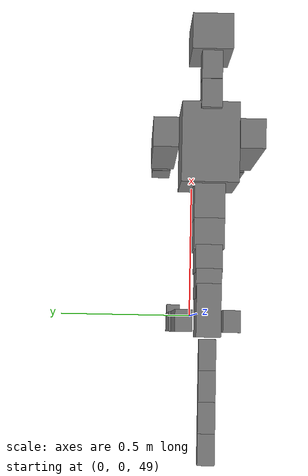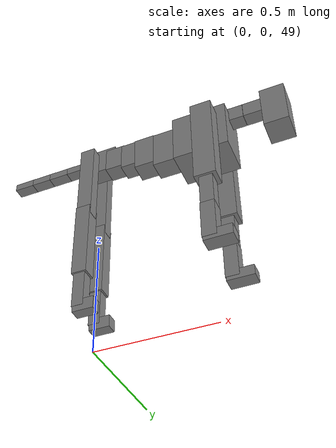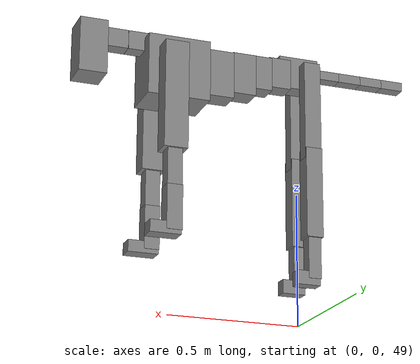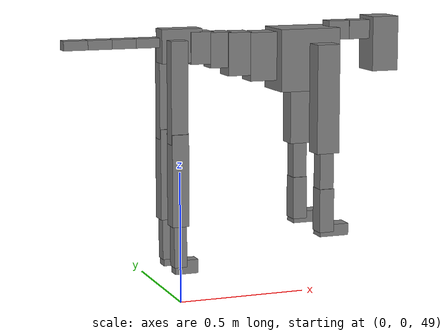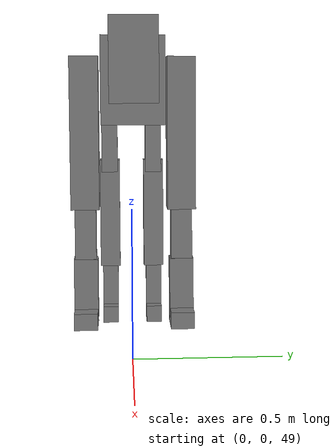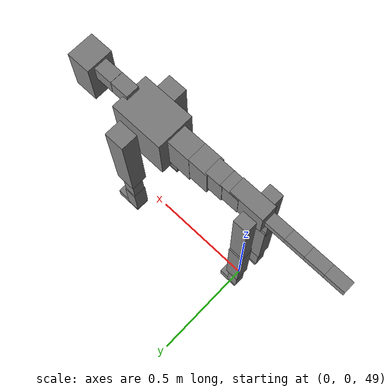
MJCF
<mujoco model="dog">

    <default>
        <joint armature="0.02" stiffness="1" damping="0.2" limited="true"/>
        <geom condim="3" friction="1 0.05 0.05" margin="0.01"/>
        <motor ctrllimited="true" ctrlrange="-1.0 1.0" forcelimited="true" gear="50"/>
    </default>

    <compiler inertiafromgeom="true" angle="radian"/>

    <option timestep="0.016" iterations="50" tolerance="1e-10" solver="Newton" jacobian="dense" cone="pyramidal"/>

    <size nconmax="20000" njmax="60000" nstack="5000000"/>
    <visual>
        <map force="0.1" zfar="30"/>
        <rgba haze="0.15 0.25 0.35 1"/>
        <quality shadowsize="2048"/>
        <global offwidth="800" offheight="800"/>
    </visual>

    <asset>
        <texture type="skybox" builtin="gradient" rgb1="0.3 0.5 0.7" rgb2="0 0 0" width="512" height="512"/>
        <texture name="texplane" type="2d" builtin="checker" rgb1=".2 .3 .4" rgb2=".1 0.15 0.2" width="512" height="512"
                 mark="cross" markrgb=".8 .8 .8"/>
        <texture name="texgeom" type="cube" builtin="flat" mark="cross" width="127" height="1278" rgb1="0.8 0.6 0.4"
                 rgb2="0.8 0.6 0.4" markrgb="1 1 1" random="0.01"/>

        <material name="matplane" reflectance="0.3" texture="texplane" texrepeat="1 1" texuniform="true"/>
        <material name="matgeom" texture="texgeom" texuniform="true" rgba="0.8 0.6 .4 1"/>
    </asset>

    <worldbody>
        <geom name="floor" pos="0 0 0" size="0 0 .25" type="plane" material="matplane" condim="3"/>

        <light directional="false" diffuse=".2 .2 .2" specular="0 0 0" pos="0 0 5" dir="0 0 -1" castshadow="false"/>
        <light mode="targetbodycom" target="torso" directional="false" diffuse=".8 .8 .8" specular="0.3 0.3 0.3"
               pos="0 0 4.0" dir="0 0 -1"/>

        <body name="root" pos="0 0 50">
            <freejoint name="root_1"/>
            <geom type="box" pos="0 0 -0.02" size="0.0774  0.0358  0.063" density="2030"/>

            <body name="spine1" pos="0.054 0 0">
                <joint name="spine1_y" axis="0 1 0" range="0 0.7" limited="true"/>
                <geom type="box" pos="0.02375 0 -0.03" size="0.04375  0.0375  0.05985" density="2030"/>

                <body name="spine2" pos="0.0612 0 0">
                    <joint name="spine2_y" axis="0 1 0" range="-0.15 0.15" limited="true"/>
                    <geom type="box" pos="0.03555  0  -0.04" size="0.04055  0.039  0.06615" density="2030"/>

                    <body name="spine3" pos="0.0730 0 0">
                        <joint name="spine3_y" axis="0 1 0" range="-0.15 0.15" limited="true"/>
                        <geom type="box" pos="0.03555  0  -0.057" size="0.04555  0.0445  0.081" density="2030"/>

                        <body name="spine4" pos="0.0780 0 0">
                            <joint name="spine4_y" axis="0 1 0" range="-0.15 0.15" limited="true"/>
                            <geom type="box" pos="0.05265  0  -0.07" size="0.05265  0.045  0.09135" density="2030"/>

                            <body name="torso" pos="0.1082 0 0">
                                <joint name="torso_y" axis="0 1 0" range="-0.15 0.15" limited="true"/>
                                <geom type="box" pos="0.11925  0  -0.085" size="0.11925  0.085  0.11745"
                                      density="2030"/>

                                <body name="neck1" pos="0.2160  0   0.0180">
                                    <joint name="neck1_y" axis="0 1 0" range="-1.2  -1" limited="true"/>
                                    <geom type="box" pos="0.0423  0  0" size="0.0423  0.03  0.036" density="2325"/>

                                    <body name="neck2" pos="0.0853  0  0">
                                        <joint name="neck2_y" axis="0 1 0" range="0.1  0" limited="true"/>
                                        <geom type="box" pos="0.0423  0  0" size="0.0423  0.03  0.036" density="2325"/>

                                        <body name="head" pos="0.0853  0  0">
                                            <joint name="head_y" axis="0 1 0" range="-0.3  -0.2" limited="true"/>
                                            <geom type="box" pos="0.0531  0  -0.055" size="0.0531  0.06  0.1044"
                                                  density="4030"/>

                                        </body>
                                    </body>
                                </body>

                                <body name="front_shoulder" pos="0.156  0   -0.0480">
                                    <joint name="front_shoulder_y" axis="0 1 0" range="-1 1.5" limited="true"/>
                                    <geom type="box" pos="0 0.13 -0.1785" size="0.0448  0.0383  0.2052" density="1158"/>
                                    <geom type="box" pos="0 -0.13 -0.1785" size="0.0448  0.0383  0.2052"
                                          density="1158"/>

                                    <body name="front_elbow" pos="0  0  -0.3571">
                                        <joint name="front_elbow_y" axis="0 1 0" range="-2 0" limited="true"/>
                                        <geom type="box" pos="0 0.13 -0.0882" size="0.0279  0.0285  0.0882"
                                              density="1081"/>
                                        <geom type="box" pos="0 -0.13 -0.0882" size="0.0279  0.0285  0.0882"
                                              density="1081"/>

                                        <body name="front_wrist" pos="0  0  -0.1765">
                                            <joint name="front_wrist_y" axis="0 1 0" range="-0.2 0" limited="true"/>
                                            <geom type="box" pos="0 0.13 -0.0699" size="0.0290  0.0323  0.0831"
                                                  density="1664"/>
                                            <geom type="box" pos="0 -0.13 -0.0699" size="0.0290  0.0323  0.0831"
                                                  density="1664"/>

                                            <body name="front_finger_end" pos="0  0  -0.1398">
                                                <joint name="front_finger_y" axis="0 1 0" range="-0.4 1"
                                                       limited="true"/>
                                                <geom type="box" pos="0.0316  0.13  -0.0075"
                                                      size="0.0579  0.0316  0.0225" density="1515"/>
                                                <geom type="box" pos="0.0316  -0.13  -0.0075"
                                                      size="0.0579  0.0316  0.0225" density="1515"/>

                                            </body>

                                        </body>
                                    </body>
                                </body>

                            </body>
                        </body>
                    </body>
                </body>
            </body>

            <body name="back_hip" pos="-0.03 0 -0.018">
                <joint name="back_hip_y" axis="0 1 0" range="-1.5 0.3" limited="true"/>
                <geom type="box" pos="0 0.07 -0.1680" size="0.0324  0.0254  0.1908" density="1154"/>
                <geom type="box" pos="0 -0.07 -0.1680" size="0.0324  0.0254  0.1908" density="1154"/>

                <body name="back_knee" pos="0  0  -0.3360">
                    <joint name="back_knee_y" axis="0 1 0" range="0 2.8" limited="true"/>
                    <geom type="box" pos="0 0.07 -0.1571" size="0.0320  0.0315  0.1726" density="1227"/>
                    <geom type="box" pos="0 -0.07 -0.1571" size="0.0320  0.0315  0.1726" density="1227"/>

                    <body name="back_ankle" pos="0  0  -0.3141">
                        <joint name="back_ankle_y" axis="0 1 0" range="-2.2 0" limited="true"/>
                        <geom type="box" pos="0 0.07 -0.0798" size="0.0245  0.0245  0.0911" density="1284"/>
                        <geom type="box" pos="0 -0.07 -0.0798" size="0.0245  0.0245  0.0911" density="1284"/>

                        <body name="back_toe_end" pos="0  0  -0.1596">
                            <joint name="back_toe_y" axis="0 1 0" range="-0.4 1" limited="true"/>
                            <geom type="box" pos="0.0241  0.07  -0.0111" size="0.0443  0.0241  0.0261" density="1515"/>
                            <geom type="box" pos="0.0241  -0.07  -0.0111" size="0.0443  0.0241  0.0261" density="1515"/>

                        </body>
                    </body>
                </body>
            </body>

            <body name="tail1" pos="-0.074 0 -0.006">
                <joint name="tail1_y" axis="0 1 0" range="-0.2 0.2" limited="true"/>
                <geom type="box" pos="-0.0536  0  0" size="0.045  0.025  0.0175" density="1587"/>

                <body name="tail2" pos="-0.09 0 0">
                    <joint name="tail2_y" axis="0 1 0" range="-0.2 0.2" limited="true"/>
                    <geom type="box" pos="-0.0536  0  0" size="0.045  0.025  0.0175" density="1587"/>

                    <body name="tail3" pos="-0.09 0 0">
                        <joint name="tail3_y" axis="0 1 0" range="-0.2 0.2" limited="true"/>
                        <geom type="box" pos="-0.0536  0  0" size="0.045  0.025  0.0175" density="1587"/>

                        <body name="tail4" pos="-0.09 0 0">
                            <joint name="tail4_y" axis="0 1 0" range="-0.2 0.2" limited="true"/>
                            <geom type="box" pos="-0.0536  0  0" size="0.045  0.025  0.0175" density="1587"/>

                        </body>
                    </body>
                </body>
            </body>
        </body>
    </worldbody>

    <actuator>
        <motor joint="spine1_y" forcerange="-150 150     "/>
        <motor joint="spine2_y" forcerange="-150 150     "/>
        <motor joint="spine3_y" forcerange="-150 150     "/>
        <motor joint="spine4_y" forcerange="-150 150     "/>
        <motor joint="torso_y" forcerange="-150 150     "/>
        <motor joint="neck1_y" forcerange="-100 100       "/>
        <motor joint="neck2_y" forcerange="-100 100       "/>
        <motor joint="head_y" forcerange="-150 150       "/>
        <motor joint="front_shoulder_y" forcerange="-177.46 177.79"/>
        <motor joint="front_elbow_y" forcerange="-146.51 160.78"/>
        <motor joint="front_wrist_y" forcerange="-111.83 146.17"/>
        <motor joint="front_finger_y" forcerange="-90.47 37.87"/>
        <motor joint="back_hip_y" forcerange="-264.15 275.04"/>
        <motor joint="back_knee_y" forcerange="-379.06 279.36"/>
        <motor joint="back_angle_y" forcerange="-81.73 210.33"/>
        <motor joint="back_toe_y" forcerange="-51.88 61.21"/>
        <motor joint="tail1_y" forcerange="-50 50     "/>
        <motor joint="tail2_y" forcerange="-50 50     "/>
        <motor joint="tail3_y" forcerange="-50 50     "/>
        <motor joint="tail4_y" forcerange="-50 50     "/>
    </actuator>
</mujoco>
